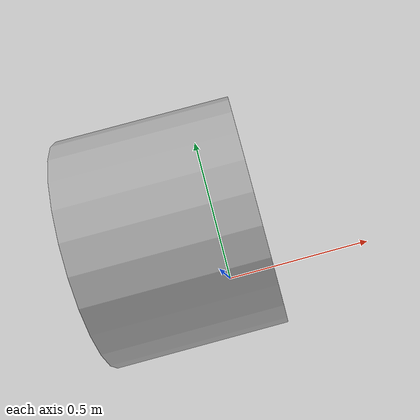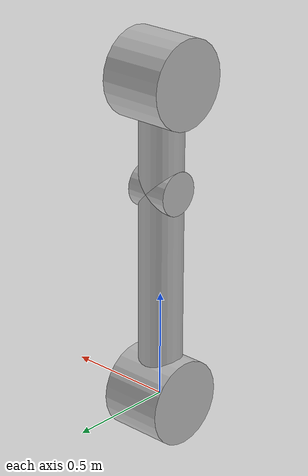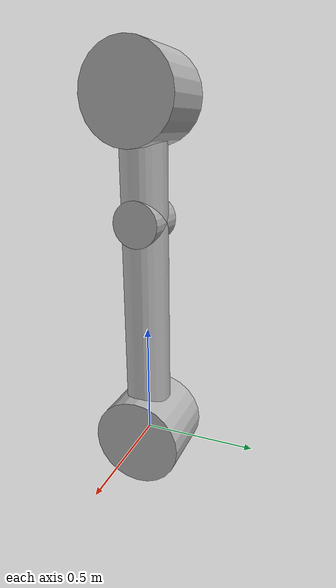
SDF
<?xml version='1.0' ?>

<!-- THIS FILE IS GENERATED FROM tribot.rsdf -->

<sdf version='1.6'>
  <model name='Tribot'>
    <link name='major_wheel'>
      <pose>0 0 0 0 0 0</pose>
      <inertial>
        <mass>10.0</mass>
        <inertia>
          <ixx>0.175</ixx>
          <iyy>0.175</iyy>
          <izz>0.20000000000000004</izz>
          <ixy>0</ixy><ixz>0</ixz><iyz>0</iyz>
        </inertia>
      </inertial>

      <visual name='vis_major_wheel_joint'>
        <pose>0 0 0 0 1.5708 0</pose>
        <geometry>
          <cylinder>
            <radius>0.2</radius>
            <length>0.3</length>
          </cylinder>
        </geometry>
      </visual>
      <collision name='col_major_wheel_joint'>
        <pose>0 0 0 0 1.5708 0</pose>
        <geometry>
          <cylinder>
            <radius>0.2</radius>
            <length>0.3</length>
          </cylinder>
        </geometry>
      </collision>

    </link>

    <link name='major_link'>
      <gravity>true</gravity>
      <self_collide>0</self_collide>
      <pose>0 0 0.5 0 0 0</pose>
      <inertial>
        <mass>1.0</mass>
        <!--TODO: Set correct inertial matrix for cylinder -->
      </inertial>

      <visual name='vis_cylinder'>
        <pose>0 0 0 0 0 0</pose>
        <geometry>
          <cylinder>
            <radius>0.1</radius>
            <length>1</length>
          </cylinder>
        </geometry>
      </visual>
      <collision name='col_cylinder'>
        <pose>0 0 0 0 0 0</pose>
        <geometry>
          <cylinder>
            <radius>0.1</radius>
            <length>1</length>
          </cylinder>
        </geometry>
      </collision>

      <visual name='vis_mid_joint'>
        <pose>0 0 0.5 0 1.5708 0</pose>
        <geometry>
          <cylinder>
            <radius>0.1</radius>
            <length>0.2</length>
          </cylinder>
        </geometry>
      </visual>
      <collision name='col_mid_joint'>
        <pose>0 0 0.5 0 1.5708 0</pose>
        <geometry>
          <cylinder>
            <radius>0.1</radius>
            <length>0.2</length>
          </cylinder>
        </geometry>
      </collision>
    </link>

    <link name='minor_link'>
      <gravity>true</gravity>
      <pose>0 0 1.25 0 0 0</pose>
      <self_collide>0</self_collide>
      <inertial>
        <mass>1.0</mass>
        <!--TODO: Set correct inertial matrix for cylinder -->
      </inertial>

      <visual name='vis_cylinder'>
        <pose>0 0 0 0 0 0</pose>
        <geometry>
          <cylinder>
            <radius>0.1</radius>
            <length>0.5</length>
          </cylinder>
        </geometry>
      </visual>
      <collision name='col_cylinder'>
        <pose>0 0 0 0 0 0</pose>
        <geometry>
          <cylinder>
            <radius>0.1</radius>
            <length>0.5</length>
          </cylinder>
        </geometry>
      </collision>
    </link>

    <link name='minor_wheel'>
      <pose>0 0 1.5 0 0 0</pose>
      <inertial>
        <mass>10.0</mass>
        <inertia>
          <ixx>0.175</ixx>
          <iyy>0.175</iyy>
          <izz>0.20000000000000004</izz>
          <ixy>0</ixy><ixz>0</ixz><iyz>0</iyz>
        </inertia>
      </inertial>

      <visual name='vis_major_wheel_joint'>
        <pose>0 0 0 0 1.5708 0</pose>
        <geometry>
          <cylinder>
            <radius>0.2</radius>
            <length>0.3</length>
          </cylinder>
        </geometry>
      </visual>
      <collision name='col_major_wheel_joint'>
        <pose>0 0 0 0 1.5708 0</pose>
        <geometry>
          <cylinder>
            <radius>0.2</radius>
            <length>0.3</length>
          </cylinder>
        </geometry>
      </collision>

    </link>

    <joint name='major_link_wheel_joint' type='revolute'>
      <!--With respect to child frame-->
      <pose>0 0 -0.5 0 0 0</pose>
      <parent>major_wheel</parent>
      <child>major_link</child>
      <axis>
        <xyz>1.0 0 0</xyz>
      </axis>
    </joint>

    <joint name='mid_joint' type='revolute'>
      <!--With respect to child frame-->
      <pose>0 0 -0.25 0 0 0</pose>
      <parent>major_link</parent>
      <child>minor_link</child>
      <axis>
        <xyz>1.0 0 0</xyz>
        <use_parent_model_frame>true</use_parent_model_frame>
      </axis>
    </joint>

    <joint name='minor_link_wheel_joint' type='revolute'>
      <!--With respect to child frame-->
      <pose>0 0 0 0 0 0</pose>
      <parent>minor_link</parent>
      <child>minor_wheel</child>
      <axis>
        <xyz>1.0 0 0</xyz>
      </axis>
    </joint>

  </model>
</sdf>
